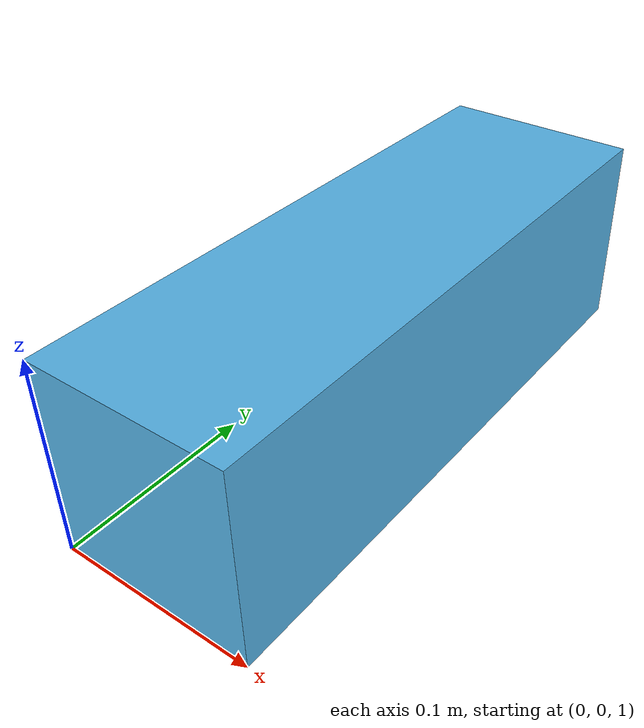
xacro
<?xml version='1.0' encoding='utf-8'?>
<robot xmlns:xacro="http://ros.org/wiki/xacro" name="camera">
    <!-- Used for fixing camera to Gazebo 'base_link' -->
  <link name="world"/>

  <joint name="fixed" type="fixed">
    <origin xyz="0 0 1" rpy="0 0 0"/>
    <parent link="world"/>
    <child link="camera_link"/>
  </joint>

  <xacro:property name="height" value="0.1" />
  <xacro:property name="width" value="0.3" />
  <xacro:property name="depth" value="0.1" />

  <link name="camera_link">
    <collision>
      <origin xyz="${depth/2} ${width/2} ${height/2}" rpy="0 0 0"/>
      <geometry>
        <box size="${depth} ${width} ${height}"/>
      </geometry>
    </collision>

    <visual>
      <origin xyz="${depth/2} ${width/2} ${height/2}" rpy="0 0 0"/>
      <geometry>
        <box size="${depth} ${width} ${height}"/>
      </geometry>
    </visual>

    <inertial>
      <origin xyz="${depth/2} ${width/2} ${height/2}" rpy="0 0 0"/>
      <mass value="1"/>
      <inertia
        ixx="1.0" ixy="0.0" ixz="0.0"
        iyy="1.0" iyz="0.0"
        izz="1.0"/>
    </inertial>
  </link>

  <joint name="camera_optical_joint" type="fixed">
            <origin xyz="0 0 0" rpy="-1.5708 0 -1.5708"/>
            <parent link="camera_link"/>
            <child link="camera_optical"/>
        </joint>
  <link name="camera_optical"/>

  <xacro:property name="camera_name" value="camera" />
  <gazebo reference="camera_optical">
  <sensor name="camera" type="depth">
    <update_rate>20</update_rate>
    <camera>
      <horizontal_fov>1.047198</horizontal_fov>
      <image>
        <width>1280</width>
        <height>720</height>
        <format>B8G8R8</format>
      </image>
      <clip>
        <near>0.05</near>
        <far>3</far>
      </clip>
    </camera>
    <plugin name="rgbd_controller" filename="libgazebo_ros_openni_kinect.so">
      <baseline>0.2</baseline>
      <alwaysOn>true</alwaysOn>
      <updateRate>1.0</updateRate>
      <cameraName>${camera_name}_ir</cameraName>
      <imageTopicName>/${camera_name}/color/image_raw</imageTopicName>
      <cameraInfoTopicName>/${camera_name}/color/camera_info</cameraInfoTopicName>
      <depthImageTopicName>/${camera_name}/depth/image_raw</depthImageTopicName>
      <depthImageInfoTopicName>/${camera_name}/depth/camera_info</depthImageInfoTopicName>
      <pointCloudTopicName>/${camera_name}/depth/points</pointCloudTopicName>
      <frameName>camera_optical</frameName>
      <pointCloudCutoff>0.5</pointCloudCutoff>
      <pointCloudCutoffMax>3.0</pointCloudCutoffMax>
      <distortionK1>0.00000001</distortionK1>
      <distortionK2>0.00000001</distortionK2>
      <distortionK3>0.00000001</distortionK3>
      <distortionT1>0.00000001</distortionT1>
      <distortionT2>0.00000001</distortionT2>
      <CxPrime>0</CxPrime>
      <Cx>0</Cx>
      <Cy>0</Cy>
      <focalLength>0</focalLength>
      <hackBaseline>0</hackBaseline>
    </plugin>
  </sensor>
  </gazebo>

</robot>
